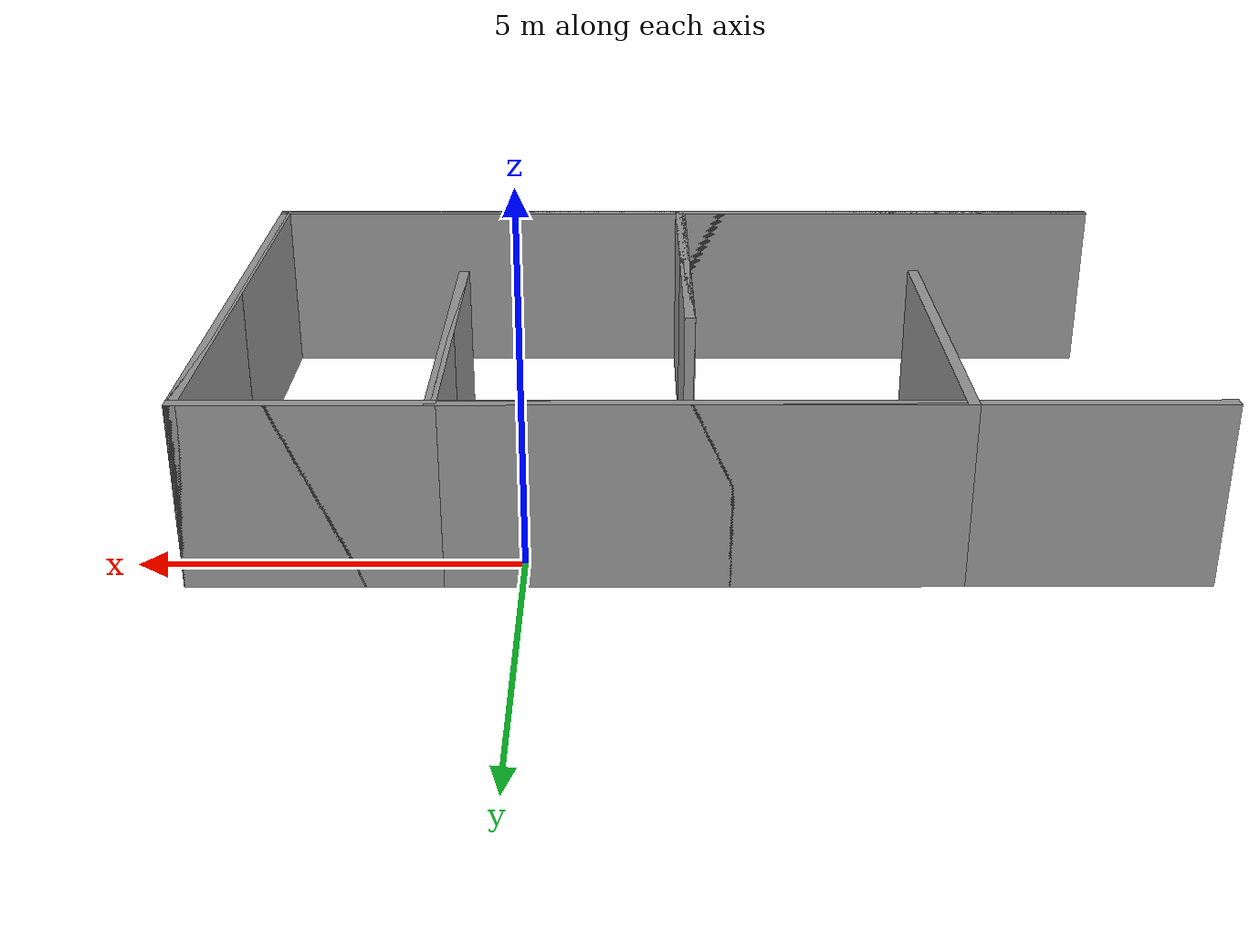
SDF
<?xml version='1.0'?>
<sdf version='1.6'>
  <model name='Map6'>
    <pose frame=''>-2.22234 -3.3948 0 0 -0 0</pose>
    <link name='Wall_10'>
      <collision name='Wall_10_Collision'>
        <geometry>
          <box>
            <size>3.28179 0.15 2.5</size>
          </box>
        </geometry>
        <pose frame=''>0 0 1.25 0 -0 0</pose>
      </collision>
      <visual name='Wall_10_Visual'>
        <pose frame=''>0 0 1.25 0 -0 0</pose>
        <geometry>
          <box>
            <size>3.28179 0.15 2.5</size>
          </box>
        </geometry>
        <material>
          <script>
            <uri>file://media/materials/scripts/gazebo.material</uri>
            <name>Gazebo/Grey</name>
          </script>
          <ambient>1 1 1 1</ambient>
        </material>
      </visual>
      <pose frame=''>4.8591 3.925 0 0 -0 3.14159</pose>
    </link>
    <link name='Wall_11'>
      <collision name='Wall_11_Collision'>
        <geometry>
          <box>
            <size>5 0.15 2.5</size>
          </box>
        </geometry>
        <pose frame=''>0 0 1.25 0 -0 0</pose>
      </collision>
      <visual name='Wall_11_Visual'>
        <pose frame=''>0 0 1.25 0 -0 0</pose>
        <geometry>
          <box>
            <size>5 0.15 2.5</size>
          </box>
        </geometry>
        <material>
          <script>
            <uri>file://media/materials/scripts/gazebo.material</uri>
            <name>Gazebo/Grey</name>
          </script>
          <ambient>1 1 1 1</ambient>
        </material>
      </visual>
      <pose frame=''>3.2932 1.5 0 0 0 -1.5708</pose>
    </link>
    <link name='Wall_12'>
      <collision name='Wall_12_Collision'>
        <geometry>
          <box>
            <size>5 0.15 2.5</size>
          </box>
        </geometry>
        <pose frame=''>0 0 1.25 0 -0 0</pose>
      </collision>
      <visual name='Wall_12_Visual'>
        <pose frame=''>0 0 1.25 0 -0 0</pose>
        <geometry>
          <box>
            <size>5 0.15 2.5</size>
          </box>
        </geometry>
        <material>
          <script>
            <uri>file://media/materials/scripts/gazebo.material</uri>
            <name>Gazebo/Grey</name>
          </script>
          <ambient>1 1 1 1</ambient>
        </material>
      </visual>
      <pose frame=''>3.2932 1.5 0 0 -0 1.5708</pose>
    </link>
    <link name='Wall_13'>
      <collision name='Wall_13_Collision'>
        <geometry>
          <box>
            <size>6.71821 0.15 2.5</size>
          </box>
        </geometry>
        <pose frame=''>0 0 1.25 0 -0 0</pose>
      </collision>
      <visual name='Wall_13_Visual'>
        <pose frame=''>0 0 1.25 0 -0 0</pose>
        <geometry>
          <box>
            <size>6.71821 0.15 2.5</size>
          </box>
        </geometry>
        <material>
          <script>
            <uri>file://media/materials/scripts/gazebo.material</uri>
            <name>Gazebo/Grey</name>
          </script>
          <ambient>1 1 1 1</ambient>
        </material>
      </visual>
      <pose frame=''>0.009102 3.925 0 0 -0 3.14159</pose>
    </link>
    <link name='Wall_14'>
      <collision name='Wall_14_Collision'>
        <geometry>
          <box>
            <size>5 0.15 2.5</size>
          </box>
        </geometry>
        <pose frame=''>0 0 1.25 0 -0 0</pose>
      </collision>
      <visual name='Wall_14_Visual'>
        <pose frame=''>0 0 1.25 0 -0 0</pose>
        <geometry>
          <box>
            <size>5 0.15 2.5</size>
          </box>
        </geometry>
        <material>
          <script>
            <uri>file://media/materials/scripts/gazebo.material</uri>
            <name>Gazebo/Grey</name>
          </script>
          <ambient>1 1 1 1</ambient>
        </material>
      </visual>
      <pose frame=''>-3.275 1.5 0 0 0 -1.5708</pose>
    </link>
    <link name='Wall_2'>
      <collision name='Wall_2_Collision'>
        <geometry>
          <box>
            <size>13 0.15 2.5</size>
          </box>
        </geometry>
        <pose frame=''>0 0 1.25 0 -0 0</pose>
      </collision>
      <visual name='Wall_2_Visual'>
        <pose frame=''>0 0 1.25 0 -0 0</pose>
        <geometry>
          <box>
            <size>13 0.15 2.5</size>
          </box>
        </geometry>
        <material>
          <script>
            <uri>file://media/materials/scripts/gazebo.material</uri>
            <name>Gazebo/Grey</name>
          </script>
          <ambient>1 1 1 1</ambient>
        </material>
      </visual>
      <pose frame=''>0 3.925 0 0 -0 0</pose>
    </link>
    <link name='Wall_3'>
      <collision name='Wall_3_Collision'>
        <geometry>
          <box>
            <size>8 0.15 2.5</size>
          </box>
        </geometry>
        <pose frame=''>0 0 1.25 0 -0 0</pose>
      </collision>
      <visual name='Wall_3_Visual'>
        <pose frame=''>0 0 1.25 0 -0 0</pose>
        <geometry>
          <box>
            <size>8 0.15 2.5</size>
          </box>
        </geometry>
        <material>
          <script>
            <uri>file://media/materials/scripts/gazebo.material</uri>
            <name>Gazebo/Grey</name>
          </script>
          <ambient>1 1 1 1</ambient>
        </material>
      </visual>
      <pose frame=''>6.425 0 0 0 0 -1.5708</pose>
    </link>
    <link name='Wall_4'>
      <collision name='Wall_4_Collision'>
        <geometry>
          <box>
            <size>13 0.15 2.5</size>
          </box>
        </geometry>
        <pose frame=''>0 0 1.25 0 -0 0</pose>
      </collision>
      <visual name='Wall_4_Visual'>
        <pose frame=''>0 0 1.25 0 -0 0</pose>
        <geometry>
          <box>
            <size>13 0.15 2.5</size>
          </box>
        </geometry>
        <material>
          <script>
            <uri>file://media/materials/scripts/gazebo.material</uri>
            <name>Gazebo/Grey</name>
          </script>
          <ambient>1 1 1 1</ambient>
        </material>
      </visual>
      <pose frame=''>0 -3.925 0 0 -0 3.14159</pose>
    </link>
    <link name='Wall_5'>
      <collision name='Wall_5_Collision'>
        <geometry>
          <box>
            <size>6.6276 0.15 2.5</size>
          </box>
        </geometry>
        <pose frame=''>0 0 1.25 0 -0 0</pose>
      </collision>
      <visual name='Wall_5_Visual'>
        <pose frame=''>0 0 1.25 0 -0 0</pose>
        <geometry>
          <box>
            <size>6.6276 0.15 2.5</size>
          </box>
        </geometry>
        <material>
          <script>
            <uri>file://media/materials/scripts/gazebo.material</uri>
            <name>Gazebo/Grey</name>
          </script>
          <ambient>1 1 1 1</ambient>
        </material>
      </visual>
      <pose frame=''>-3.1862 -3.925 0 0 -0 0</pose>
    </link>
    <link name='Wall_6'>
      <collision name='Wall_6_Collision'>
        <geometry>
          <box>
            <size>5 0.15 2.5</size>
          </box>
        </geometry>
        <pose frame=''>0 0 1.25 0 -0 0</pose>
      </collision>
      <visual name='Wall_6_Visual'>
        <pose frame=''>0 0 1.25 0 -0 0</pose>
        <geometry>
          <box>
            <size>5 0.15 2.5</size>
          </box>
        </geometry>
        <material>
          <script>
            <uri>file://media/materials/scripts/gazebo.material</uri>
            <name>Gazebo/Grey</name>
          </script>
          <ambient>1 1 1 1</ambient>
        </material>
      </visual>
      <pose frame=''>0.052597 -1.5 0 0 -0 1.5708</pose>
    </link>
    <link name='Wall_7'>
      <collision name='Wall_7_Collision'>
        <geometry>
          <box>
            <size>5 0.15 2.5</size>
          </box>
        </geometry>
        <pose frame=''>0 0 1.25 0 -0 0</pose>
      </collision>
      <visual name='Wall_7_Visual'>
        <pose frame=''>0 0 1.25 0 -0 0</pose>
        <geometry>
          <box>
            <size>5 0.15 2.5</size>
          </box>
        </geometry>
        <material>
          <script>
            <uri>file://media/materials/scripts/gazebo.material</uri>
            <name>Gazebo/Grey</name>
          </script>
          <ambient>1 1 1 1</ambient>
        </material>
      </visual>
      <pose frame=''>0.052597 -1.5 0 0 0 -1.5708</pose>
    </link>
    <link name='Wall_8'>
      <collision name='Wall_8_Collision'>
        <geometry>
          <box>
            <size>6.5224 0.15 2.5</size>
          </box>
        </geometry>
        <pose frame=''>0 0 1.25 0 -0 0</pose>
      </collision>
      <visual name='Wall_8_Visual'>
        <pose frame=''>0 0 1.25 0 -0 0</pose>
        <geometry>
          <box>
            <size>6.5224 0.15 2.5</size>
          </box>
        </geometry>
        <material>
          <script>
            <uri>file://media/materials/scripts/gazebo.material</uri>
            <name>Gazebo/Grey</name>
          </script>
          <ambient>1 1 1 1</ambient>
        </material>
      </visual>
      <pose frame=''>3.2388 -3.925 0 0 -0 0</pose>
    </link>
    <link name='Wall_9'>
      <collision name='Wall_9_Collision'>
        <geometry>
          <box>
            <size>8 0.15 2.5</size>
          </box>
        </geometry>
        <pose frame=''>0 0 1.25 0 -0 0</pose>
      </collision>
      <visual name='Wall_9_Visual'>
        <pose frame=''>0 0 1.25 0 -0 0</pose>
        <geometry>
          <box>
            <size>8 0.15 2.5</size>
          </box>
        </geometry>
        <material>
          <script>
            <uri>file://media/materials/scripts/gazebo.material</uri>
            <name>Gazebo/Grey</name>
          </script>
          <ambient>1 1 1 1</ambient>
        </material>
      </visual>
      <pose frame=''>6.425 0 0 0 -0 1.5708</pose>
    </link>
    <static>1</static>
  </model>
</sdf>
